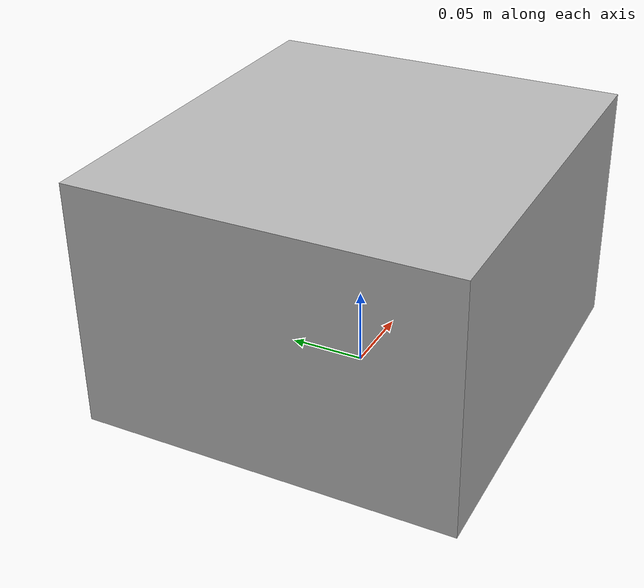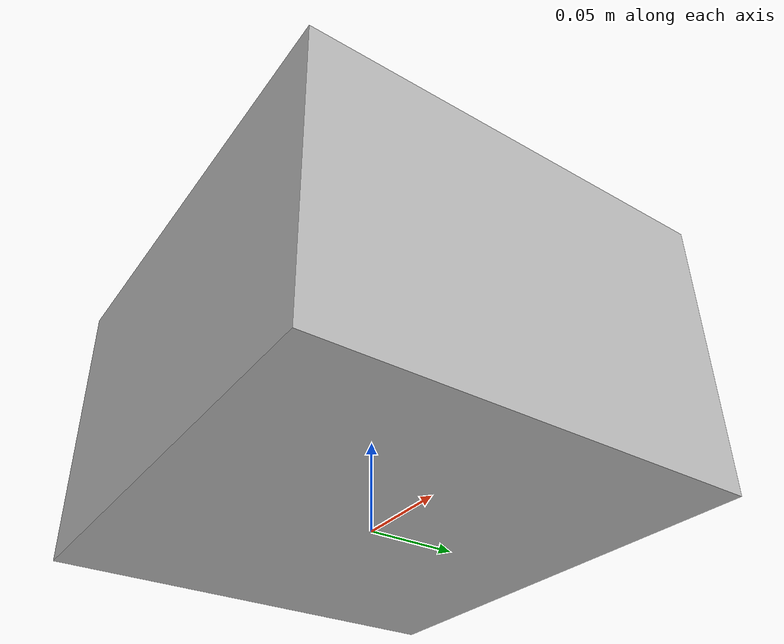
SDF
<sdf version="1.6">
    <model name="car_coolant_tank">
        <allow_auto_disable>true</allow_auto_disable>
        <link name="link_1">
            <kinematic>true</kinematic>
            <pose>0 0 0.08 0 0 0 0</pose>
            <visual name="visual">
                <geometry>
                    <box>
                        <size>0.26 0.24 0.16</size>
                    </box>
                </geometry>
            </visual>
            <collision name="box_collision">
                <geometry>
                    <box>
                        <size>0.26 0.24 0.16</size>
                    </box>
                </geometry>
            </collision>
        </link>
    </model>
</sdf>
